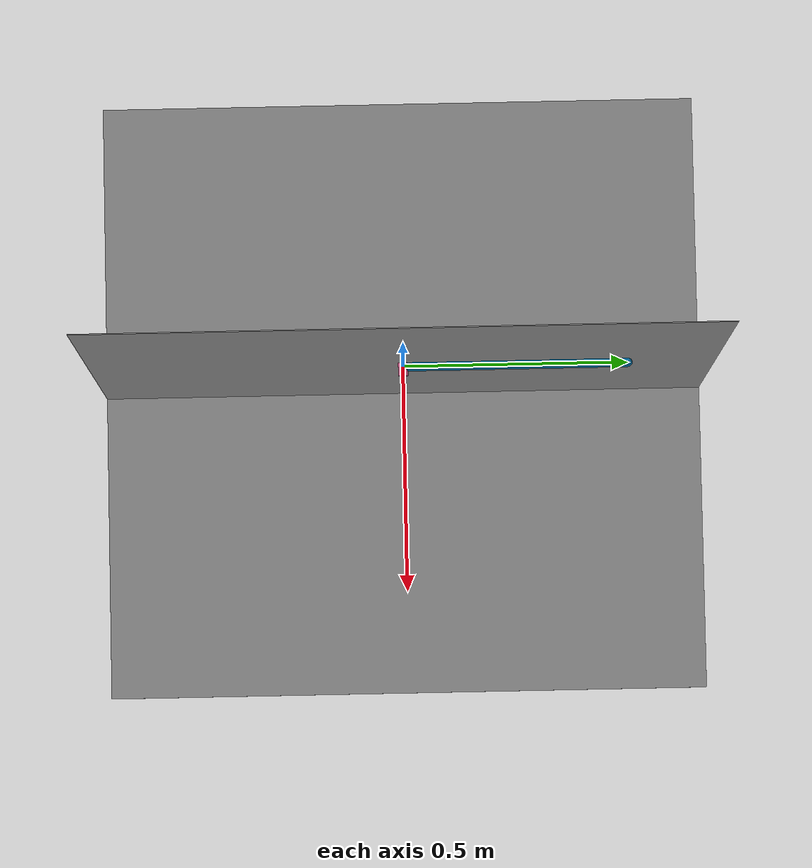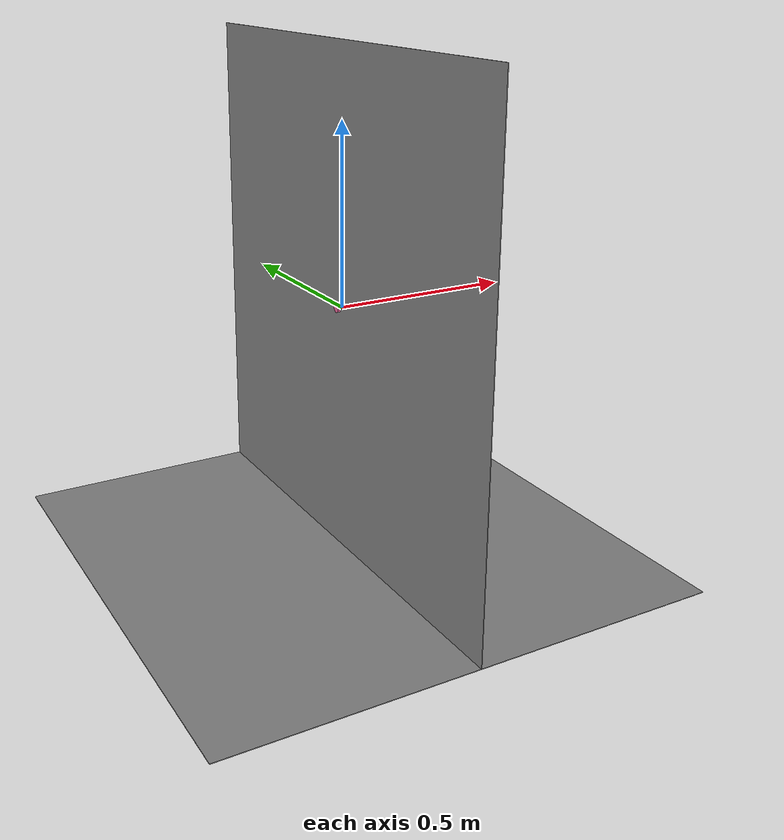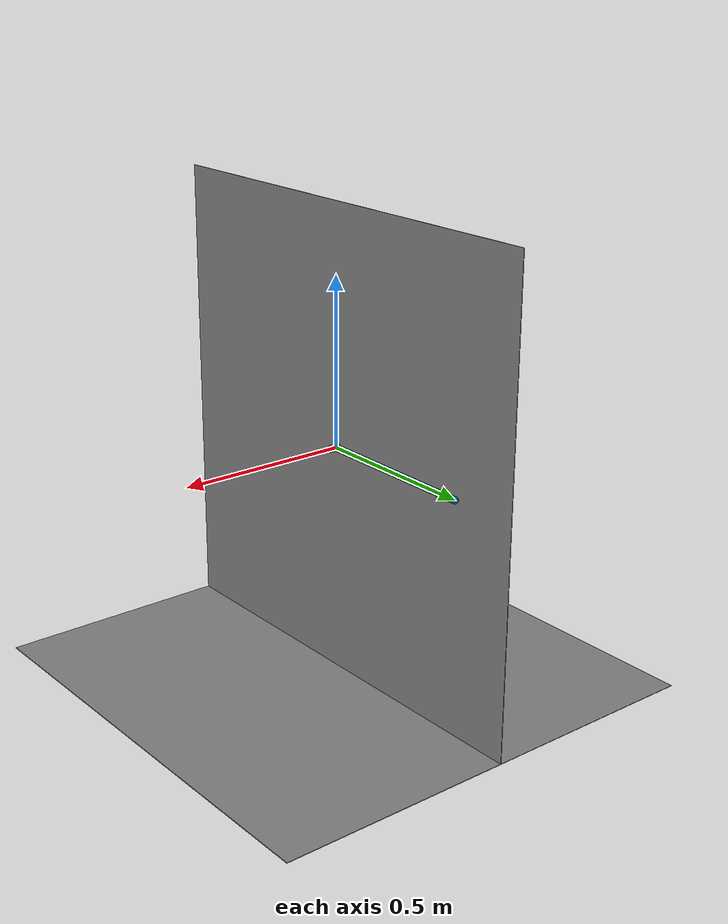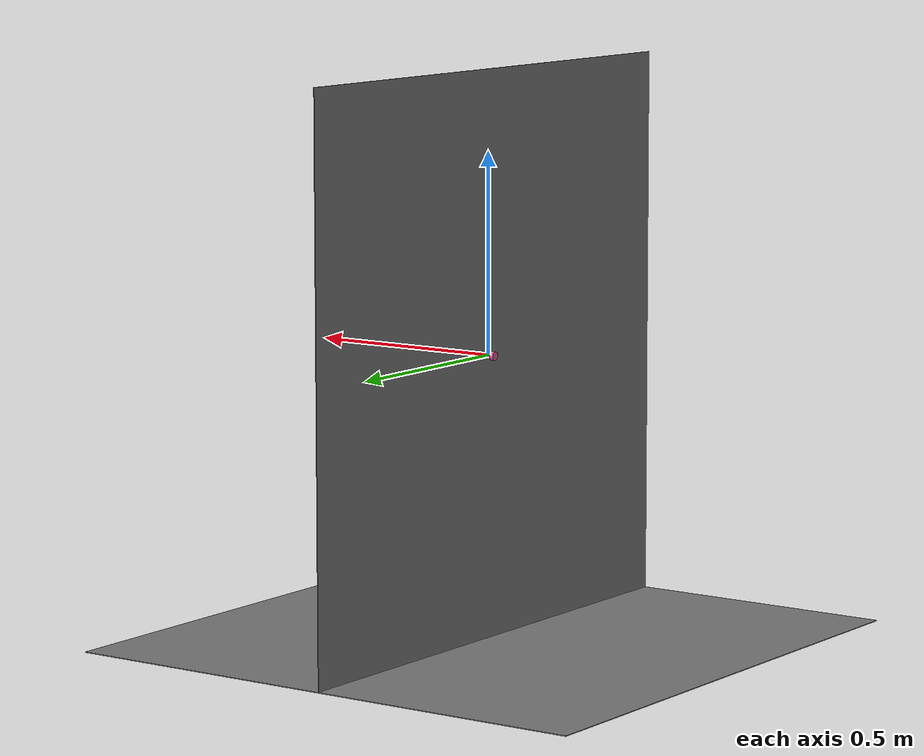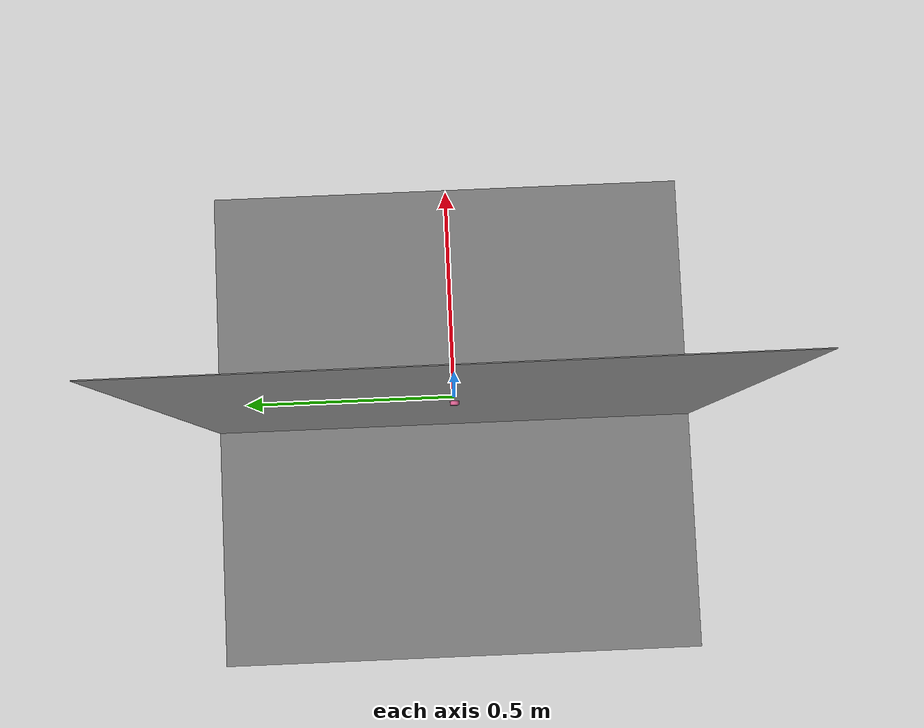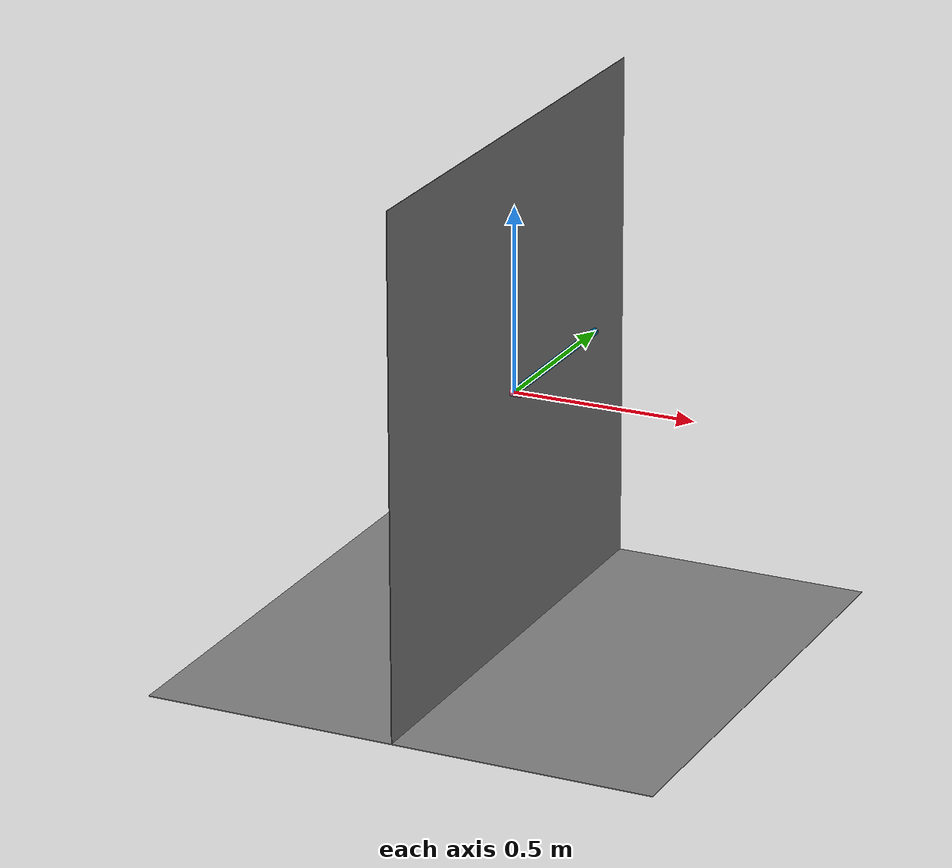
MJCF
<mujoco model="pendulum_torctrl">
	<compiler angle="radian" inertiafromgeom="true"/>

	<default>
		<joint armature="1" damping="1" limited="true"/>
		<geom contype="0" friction="1 0.1 0.1" rgba="0.7 0.7 0 1"/>
	</default>

	<option gravity="0 0 -9.81" integrator="RK4" timestep="0.01"/>

	<worldbody>
		<!--visulize x,y,and z axes-->
		<site name="x_axes" pos="0.1 0 0" size="0.1 0.001 0.001" rgba="1 0 0 0.2"  type="box"></site>
		<site name="y_axes" pos="0 0.1 0" size="0.001 0.1 0.001" rgba="0 1 0 0.2" type="box"></site>
		<site name="z_axes" pos="0 0 0.1" size="0.001 0.001 0.1" rgba="0 0 1 0.2" type="box"></site>
		<site name="wall" rgba="0.5 0.5 0.5 1" pos="-0.01 0 0" size=".001 0.7 0.7" type="box"></site>
		<site name="floor" rgba="0.5 0.5 0.5 1" pos="0 0 -0.7" size="0.7 0.7 .001" type="box"></site>

		<body name="body" pos="0 0 0" >
			<geom name="root" conaffinity="0" contype="0" pos="0 0 0" quat="0.5 0.5 -0.5 -0.5" rgba="0.9 0.4 0.6 1" size=".011 0.02"  type="cylinder"/>
			<geom name="link" fromto="0 0.5 0 0 0 0"  rgba="0.0 0.4 0.6 1" size=".01" type="capsule" mass="1.5"/>
			<joint name="joint" axis="1 0 0" limited="false" range="-3.141592 3.141592" pos="0 0 0" type="hinge" frictionloss="0.01" />
		</body>

		<light diffuse=".8 .8 .8" dir="0 -.15 -1" directional="false" pos="1 1 4.0" specular="0.3 0.3 0.3" castshadow="false"/>
		<light diffuse=".8 .8 .8" dir="0 -.15 -1" directional="false" pos="-3. -3. 4.0" specular="0.3 0.3 0.3" castshadow="false"/>
    	<camera mode="fixed" name="frontview" pos="2.6 0 0" quat="0.5 0.5 0.5 0.5"/>
	</worldbody>

	<actuator>
		<motor name="motor" ctrllimited="true" ctrlrange="-1.0 1.0" gear="5.0" joint="joint"/>
	</actuator>

</mujoco>
